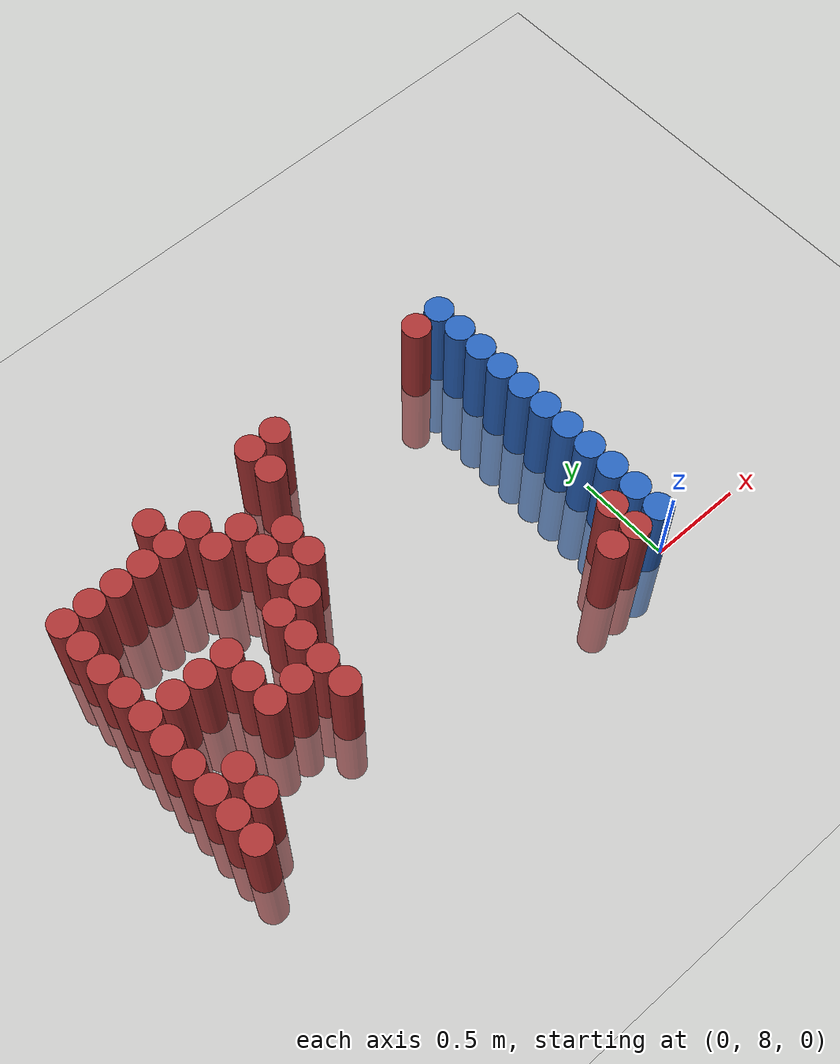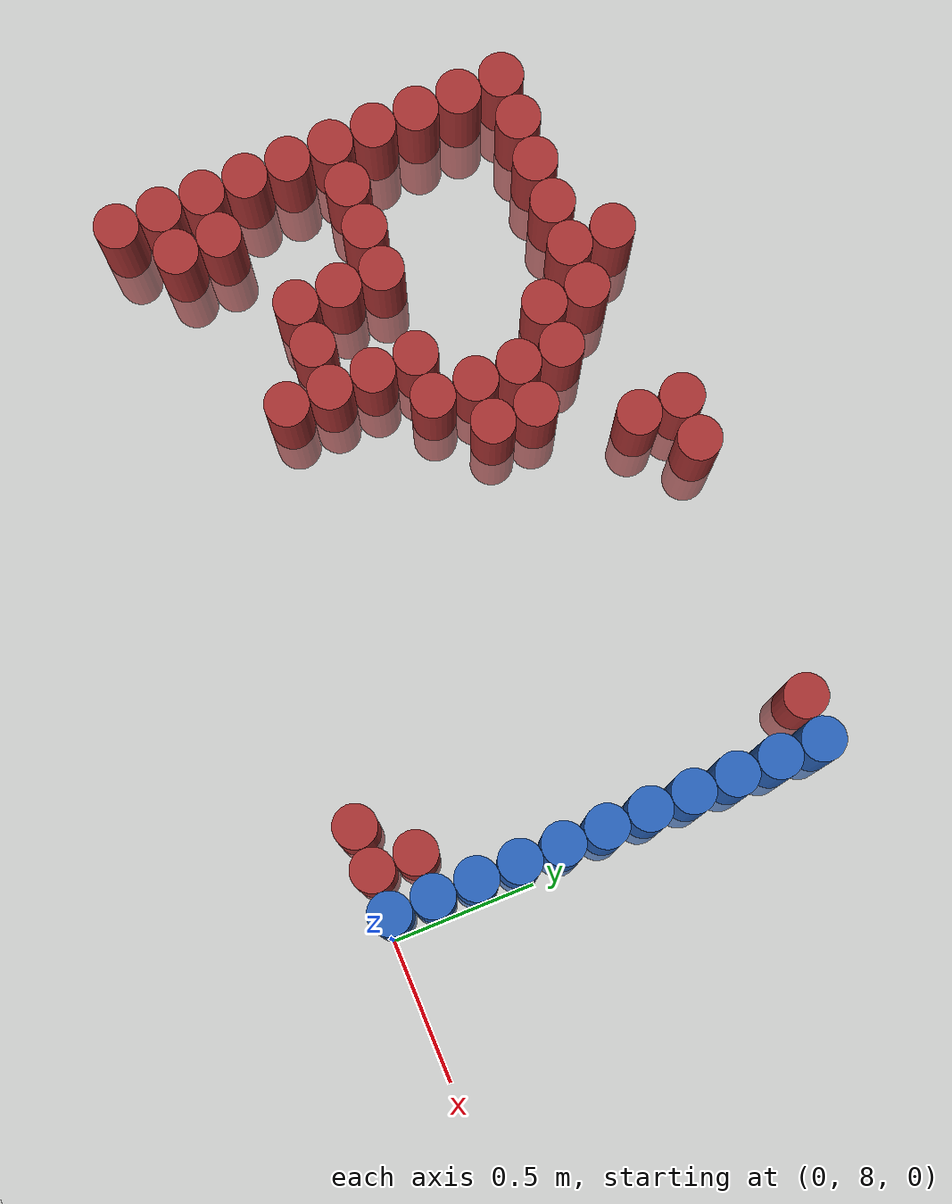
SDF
<sdf version="1.6">
 <world name="default">
  <model name="ground_plane">
   <static>1</static>
   <link name="link">
    <collision name="collision">
     <geometry><plane><normal>0 0 1</normal><size>100 100</size></plane></geometry>
     <surface><friction><ode><mu>100</mu><mu2>50</mu2></ode></friction></surface>
    </collision>
    <visual name="visual">
     <cast_shadows>0</cast_shadows>
     <geometry><plane><normal>0 0 1</normal><size>100 100</size></plane></geometry>
     <material>
      <script><uri>file://media/materials/scripts/gazebo.material</uri><name>Gazebo/Grey</name></script>
     </material>
    </visual>
   </link>
  </model>
  <model name="unit_cylinder_244">
   <static>1</static>
   <pose>-2.475000 8.025000 0.000000 0.000000 0.000000 0.000000</pose>
   <link name="link">
    <inertial>
     <mass>1</mass>
     <inertia><ixx>0.145833</ixx><ixy>0</ixy><ixz>0</ixz><iyy>0.145833</iyy><iyz>0</iyz><izz>0.125</izz></inertia>
    </inertial>
    <collision name="collision">
     <geometry><cylinder><radius>0.075000</radius><length>1</length></cylinder></geometry>
    </collision>
    <visual name="visual">
     <geometry><cylinder><radius>0.075000</radius><length>1</length></cylinder></geometry>
     <material>
      <ambient>0.648000 0.192000 0.192000 1</ambient>
      <diffuse>0.648000 0.192000 0.192000 1</diffuse>
     </material>
     <material>
      <script><name>Gazebo/Grey</name><uri>file://media/materials/scripts/gazebo.material</uri></script>
     </material>
    </visual>
   </link>
  </model>
  <model name="unit_cylinder_245">
   <static>1</static>
   <pose>-2.475000 8.175000 0.000000 0.000000 0.000000 0.000000</pose>
   <link name="link">
    <inertial>
     <mass>1</mass>
     <inertia><ixx>0.145833</ixx><ixy>0</ixy><ixz>0</ixz><iyy>0.145833</iyy><iyz>0</iyz><izz>0.125</izz></inertia>
    </inertial>
    <collision name="collision">
     <geometry><cylinder><radius>0.075000</radius><length>1</length></cylinder></geometry>
    </collision>
    <visual name="visual">
     <geometry><cylinder><radius>0.075000</radius><length>1</length></cylinder></geometry>
     <material>
      <ambient>0.648000 0.192000 0.192000 1</ambient>
      <diffuse>0.648000 0.192000 0.192000 1</diffuse>
     </material>
     <material>
      <script><name>Gazebo/Grey</name><uri>file://media/materials/scripts/gazebo.material</uri></script>
     </material>
    </visual>
   </link>
  </model>
  <model name="unit_cylinder_246">
   <static>1</static>
   <pose>-2.475000 8.325000 0.000000 0.000000 0.000000 0.000000</pose>
   <link name="link">
    <inertial>
     <mass>1</mass>
     <inertia><ixx>0.145833</ixx><ixy>0</ixy><ixz>0</ixz><iyy>0.145833</iyy><iyz>0</iyz><izz>0.125</izz></inertia>
    </inertial>
    <collision name="collision">
     <geometry><cylinder><radius>0.075000</radius><length>1</length></cylinder></geometry>
    </collision>
    <visual name="visual">
     <geometry><cylinder><radius>0.075000</radius><length>1</length></cylinder></geometry>
     <material>
      <ambient>0.648000 0.192000 0.192000 1</ambient>
      <diffuse>0.648000 0.192000 0.192000 1</diffuse>
     </material>
     <material>
      <script><name>Gazebo/Grey</name><uri>file://media/materials/scripts/gazebo.material</uri></script>
     </material>
    </visual>
   </link>
  </model>
  <model name="unit_cylinder_247">
   <static>1</static>
   <pose>-2.475000 8.475000 0.000000 0.000000 0.000000 0.000000</pose>
   <link name="link">
    <inertial>
     <mass>1</mass>
     <inertia><ixx>0.145833</ixx><ixy>0</ixy><ixz>0</ixz><iyy>0.145833</iyy><iyz>0</iyz><izz>0.125</izz></inertia>
    </inertial>
    <collision name="collision">
     <geometry><cylinder><radius>0.075000</radius><length>1</length></cylinder></geometry>
    </collision>
    <visual name="visual">
     <geometry><cylinder><radius>0.075000</radius><length>1</length></cylinder></geometry>
     <material>
      <ambient>0.648000 0.192000 0.192000 1</ambient>
      <diffuse>0.648000 0.192000 0.192000 1</diffuse>
     </material>
     <material>
      <script><name>Gazebo/Grey</name><uri>file://media/materials/scripts/gazebo.material</uri></script>
     </material>
    </visual>
   </link>
  </model>
  <model name="unit_cylinder_248">
   <static>1</static>
   <pose>-2.475000 8.625000 0.000000 0.000000 0.000000 0.000000</pose>
   <link name="link">
    <inertial>
     <mass>1</mass>
     <inertia><ixx>0.145833</ixx><ixy>0</ixy><ixz>0</ixz><iyy>0.145833</iyy><iyz>0</iyz><izz>0.125</izz></inertia>
    </inertial>
    <collision name="collision">
     <geometry><cylinder><radius>0.075000</radius><length>1</length></cylinder></geometry>
    </collision>
    <visual name="visual">
     <geometry><cylinder><radius>0.075000</radius><length>1</length></cylinder></geometry>
     <material>
      <ambient>0.648000 0.192000 0.192000 1</ambient>
      <diffuse>0.648000 0.192000 0.192000 1</diffuse>
     </material>
     <material>
      <script><name>Gazebo/Grey</name><uri>file://media/materials/scripts/gazebo.material</uri></script>
     </material>
    </visual>
   </link>
  </model>
  <model name="unit_cylinder_249">
   <static>1</static>
   <pose>-2.475000 8.775000 0.000000 0.000000 0.000000 0.000000</pose>
   <link name="link">
    <inertial>
     <mass>1</mass>
     <inertia><ixx>0.145833</ixx><ixy>0</ixy><ixz>0</ixz><iyy>0.145833</iyy><iyz>0</iyz><izz>0.125</izz></inertia>
    </inertial>
    <collision name="collision">
     <geometry><cylinder><radius>0.075000</radius><length>1</length></cylinder></geometry>
    </collision>
    <visual name="visual">
     <geometry><cylinder><radius>0.075000</radius><length>1</length></cylinder></geometry>
     <material>
      <ambient>0.648000 0.192000 0.192000 1</ambient>
      <diffuse>0.648000 0.192000 0.192000 1</diffuse>
     </material>
     <material>
      <script><name>Gazebo/Grey</name><uri>file://media/materials/scripts/gazebo.material</uri></script>
     </material>
    </visual>
   </link>
  </model>
  <model name="unit_cylinder_250">
   <static>1</static>
   <pose>-2.475000 8.925000 0.000000 0.000000 0.000000 0.000000</pose>
   <link name="link">
    <inertial>
     <mass>1</mass>
     <inertia><ixx>0.145833</ixx><ixy>0</ixy><ixz>0</ixz><iyy>0.145833</iyy><iyz>0</iyz><izz>0.125</izz></inertia>
    </inertial>
    <collision name="collision">
     <geometry><cylinder><radius>0.075000</radius><length>1</length></cylinder></geometry>
    </collision>
    <visual name="visual">
     <geometry><cylinder><radius>0.075000</radius><length>1</length></cylinder></geometry>
     <material>
      <ambient>0.648000 0.192000 0.192000 1</ambient>
      <diffuse>0.648000 0.192000 0.192000 1</diffuse>
     </material>
     <material>
      <script><name>Gazebo/Grey</name><uri>file://media/materials/scripts/gazebo.material</uri></script>
     </material>
    </visual>
   </link>
  </model>
  <model name="unit_cylinder_251">
   <static>1</static>
   <pose>-2.475000 9.075000 0.000000 0.000000 0.000000 0.000000</pose>
   <link name="link">
    <inertial>
     <mass>1</mass>
     <inertia><ixx>0.145833</ixx><ixy>0</ixy><ixz>0</ixz><iyy>0.145833</iyy><iyz>0</iyz><izz>0.125</izz></inertia>
    </inertial>
    <collision name="collision">
     <geometry><cylinder><radius>0.075000</radius><length>1</length></cylinder></geometry>
    </collision>
    <visual name="visual">
     <geometry><cylinder><radius>0.075000</radius><length>1</length></cylinder></geometry>
     <material>
      <ambient>0.648000 0.192000 0.192000 1</ambient>
      <diffuse>0.648000 0.192000 0.192000 1</diffuse>
     </material>
     <material>
      <script><name>Gazebo/Grey</name><uri>file://media/materials/scripts/gazebo.material</uri></script>
     </material>
    </visual>
   </link>
  </model>
  <model name="unit_cylinder_252">
   <static>1</static>
   <pose>-2.475000 9.225000 0.000000 0.000000 0.000000 0.000000</pose>
   <link name="link">
    <inertial>
     <mass>1</mass>
     <inertia><ixx>0.145833</ixx><ixy>0</ixy><ixz>0</ixz><iyy>0.145833</iyy><iyz>0</iyz><izz>0.125</izz></inertia>
    </inertial>
    <collision name="collision">
     <geometry><cylinder><radius>0.075000</radius><length>1</length></cylinder></geometry>
    </collision>
    <visual name="visual">
     <geometry><cylinder><radius>0.075000</radius><length>1</length></cylinder></geometry>
     <material>
      <ambient>0.648000 0.192000 0.192000 1</ambient>
      <diffuse>0.648000 0.192000 0.192000 1</diffuse>
     </material>
     <material>
      <script><name>Gazebo/Grey</name><uri>file://media/materials/scripts/gazebo.material</uri></script>
     </material>
    </visual>
   </link>
  </model>
  <model name="unit_cylinder_253">
   <static>1</static>
   <pose>-2.475000 9.375000 0.000000 0.000000 0.000000 0.000000</pose>
   <link name="link">
    <inertial>
     <mass>1</mass>
     <inertia><ixx>0.145833</ixx><ixy>0</ixy><ixz>0</ixz><iyy>0.145833</iyy><iyz>0</iyz><izz>0.125</izz></inertia>
    </inertial>
    <collision name="collision">
     <geometry><cylinder><radius>0.075000</radius><length>1</length></cylinder></geometry>
    </collision>
    <visual name="visual">
     <geometry><cylinder><radius>0.075000</radius><length>1</length></cylinder></geometry>
     <material>
      <ambient>0.648000 0.192000 0.192000 1</ambient>
      <diffuse>0.648000 0.192000 0.192000 1</diffuse>
     </material>
     <material>
      <script><name>Gazebo/Grey</name><uri>file://media/materials/scripts/gazebo.material</uri></script>
     </material>
    </visual>
   </link>
  </model>
  <model name="unit_cylinder_257">
   <static>1</static>
   <pose>-2.325000 8.175000 0.000000 0.000000 0.000000 0.000000</pose>
   <link name="link">
    <inertial>
     <mass>1</mass>
     <inertia><ixx>0.145833</ixx><ixy>0</ixy><ixz>0</ixz><iyy>0.145833</iyy><iyz>0</iyz><izz>0.125</izz></inertia>
    </inertial>
    <collision name="collision">
     <geometry><cylinder><radius>0.075000</radius><length>1</length></cylinder></geometry>
    </collision>
    <visual name="visual">
     <geometry><cylinder><radius>0.075000</radius><length>1</length></cylinder></geometry>
     <material>
      <ambient>0.648000 0.192000 0.192000 1</ambient>
      <diffuse>0.648000 0.192000 0.192000 1</diffuse>
     </material>
     <material>
      <script><name>Gazebo/Grey</name><uri>file://media/materials/scripts/gazebo.material</uri></script>
     </material>
    </visual>
   </link>
  </model>
  <model name="unit_cylinder_258">
   <static>1</static>
   <pose>-2.325000 8.325000 0.000000 0.000000 0.000000 0.000000</pose>
   <link name="link">
    <inertial>
     <mass>1</mass>
     <inertia><ixx>0.145833</ixx><ixy>0</ixy><ixz>0</ixz><iyy>0.145833</iyy><iyz>0</iyz><izz>0.125</izz></inertia>
    </inertial>
    <collision name="collision">
     <geometry><cylinder><radius>0.075000</radius><length>1</length></cylinder></geometry>
    </collision>
    <visual name="visual">
     <geometry><cylinder><radius>0.075000</radius><length>1</length></cylinder></geometry>
     <material>
      <ambient>0.648000 0.192000 0.192000 1</ambient>
      <diffuse>0.648000 0.192000 0.192000 1</diffuse>
     </material>
     <material>
      <script><name>Gazebo/Grey</name><uri>file://media/materials/scripts/gazebo.material</uri></script>
     </material>
    </visual>
   </link>
  </model>
  <model name="unit_cylinder_259">
   <static>1</static>
   <pose>-2.325000 8.775000 0.000000 0.000000 0.000000 0.000000</pose>
   <link name="link">
    <inertial>
     <mass>1</mass>
     <inertia><ixx>0.145833</ixx><ixy>0</ixy><ixz>0</ixz><iyy>0.145833</iyy><iyz>0</iyz><izz>0.125</izz></inertia>
    </inertial>
    <collision name="collision">
     <geometry><cylinder><radius>0.075000</radius><length>1</length></cylinder></geometry>
    </collision>
    <visual name="visual">
     <geometry><cylinder><radius>0.075000</radius><length>1</length></cylinder></geometry>
     <material>
      <ambient>0.648000 0.192000 0.192000 1</ambient>
      <diffuse>0.648000 0.192000 0.192000 1</diffuse>
     </material>
     <material>
      <script><name>Gazebo/Grey</name><uri>file://media/materials/scripts/gazebo.material</uri></script>
     </material>
    </visual>
   </link>
  </model>
  <model name="unit_cylinder_260">
   <static>1</static>
   <pose>-2.325000 9.375000 0.000000 0.000000 0.000000 0.000000</pose>
   <link name="link">
    <inertial>
     <mass>1</mass>
     <inertia><ixx>0.145833</ixx><ixy>0</ixy><ixz>0</ixz><iyy>0.145833</iyy><iyz>0</iyz><izz>0.125</izz></inertia>
    </inertial>
    <collision name="collision">
     <geometry><cylinder><radius>0.075000</radius><length>1</length></cylinder></geometry>
    </collision>
    <visual name="visual">
     <geometry><cylinder><radius>0.075000</radius><length>1</length></cylinder></geometry>
     <material>
      <ambient>0.648000 0.192000 0.192000 1</ambient>
      <diffuse>0.648000 0.192000 0.192000 1</diffuse>
     </material>
     <material>
      <script><name>Gazebo/Grey</name><uri>file://media/materials/scripts/gazebo.material</uri></script>
     </material>
    </visual>
   </link>
  </model>
  <model name="unit_cylinder_265">
   <static>1</static>
   <pose>-2.175000 8.775000 0.000000 0.000000 0.000000 0.000000</pose>
   <link name="link">
    <inertial>
     <mass>1</mass>
     <inertia><ixx>0.145833</ixx><ixy>0</ixy><ixz>0</ixz><iyy>0.145833</iyy><iyz>0</iyz><izz>0.125</izz></inertia>
    </inertial>
    <collision name="collision">
     <geometry><cylinder><radius>0.075000</radius><length>1</length></cylinder></geometry>
    </collision>
    <visual name="visual">
     <geometry><cylinder><radius>0.075000</radius><length>1</length></cylinder></geometry>
     <material>
      <ambient>0.648000 0.192000 0.192000 1</ambient>
      <diffuse>0.648000 0.192000 0.192000 1</diffuse>
     </material>
     <material>
      <script><name>Gazebo/Grey</name><uri>file://media/materials/scripts/gazebo.material</uri></script>
     </material>
    </visual>
   </link>
  </model>
  <model name="unit_cylinder_266">
   <static>1</static>
   <pose>-2.175000 9.375000 0.000000 0.000000 0.000000 0.000000</pose>
   <link name="link">
    <inertial>
     <mass>1</mass>
     <inertia><ixx>0.145833</ixx><ixy>0</ixy><ixz>0</ixz><iyy>0.145833</iyy><iyz>0</iyz><izz>0.125</izz></inertia>
    </inertial>
    <collision name="collision">
     <geometry><cylinder><radius>0.075000</radius><length>1</length></cylinder></geometry>
    </collision>
    <visual name="visual">
     <geometry><cylinder><radius>0.075000</radius><length>1</length></cylinder></geometry>
     <material>
      <ambient>0.648000 0.192000 0.192000 1</ambient>
      <diffuse>0.648000 0.192000 0.192000 1</diffuse>
     </material>
     <material>
      <script><name>Gazebo/Grey</name><uri>file://media/materials/scripts/gazebo.material</uri></script>
     </material>
    </visual>
   </link>
  </model>
  <model name="unit_cylinder_275">
   <static>1</static>
   <pose>-2.025000 8.475000 0.000000 0.000000 0.000000 0.000000</pose>
   <link name="link">
    <inertial>
     <mass>1</mass>
     <inertia><ixx>0.145833</ixx><ixy>0</ixy><ixz>0</ixz><iyy>0.145833</iyy><iyz>0</iyz><izz>0.125</izz></inertia>
    </inertial>
    <collision name="collision">
     <geometry><cylinder><radius>0.075000</radius><length>1</length></cylinder></geometry>
    </collision>
    <visual name="visual">
     <geometry><cylinder><radius>0.075000</radius><length>1</length></cylinder></geometry>
     <material>
      <ambient>0.648000 0.192000 0.192000 1</ambient>
      <diffuse>0.648000 0.192000 0.192000 1</diffuse>
     </material>
     <material>
      <script><name>Gazebo/Grey</name><uri>file://media/materials/scripts/gazebo.material</uri></script>
     </material>
    </visual>
   </link>
  </model>
  <model name="unit_cylinder_276">
   <static>1</static>
   <pose>-2.025000 8.625000 0.000000 0.000000 0.000000 0.000000</pose>
   <link name="link">
    <inertial>
     <mass>1</mass>
     <inertia><ixx>0.145833</ixx><ixy>0</ixy><ixz>0</ixz><iyy>0.145833</iyy><iyz>0</iyz><izz>0.125</izz></inertia>
    </inertial>
    <collision name="collision">
     <geometry><cylinder><radius>0.075000</radius><length>1</length></cylinder></geometry>
    </collision>
    <visual name="visual">
     <geometry><cylinder><radius>0.075000</radius><length>1</length></cylinder></geometry>
     <material>
      <ambient>0.648000 0.192000 0.192000 1</ambient>
      <diffuse>0.648000 0.192000 0.192000 1</diffuse>
     </material>
     <material>
      <script><name>Gazebo/Grey</name><uri>file://media/materials/scripts/gazebo.material</uri></script>
     </material>
    </visual>
   </link>
  </model>
  <model name="unit_cylinder_277">
   <static>1</static>
   <pose>-2.025000 8.775000 0.000000 0.000000 0.000000 0.000000</pose>
   <link name="link">
    <inertial>
     <mass>1</mass>
     <inertia><ixx>0.145833</ixx><ixy>0</ixy><ixz>0</ixz><iyy>0.145833</iyy><iyz>0</iyz><izz>0.125</izz></inertia>
    </inertial>
    <collision name="collision">
     <geometry><cylinder><radius>0.075000</radius><length>1</length></cylinder></geometry>
    </collision>
    <visual name="visual">
     <geometry><cylinder><radius>0.075000</radius><length>1</length></cylinder></geometry>
     <material>
      <ambient>0.648000 0.192000 0.192000 1</ambient>
      <diffuse>0.648000 0.192000 0.192000 1</diffuse>
     </material>
     <material>
      <script><name>Gazebo/Grey</name><uri>file://media/materials/scripts/gazebo.material</uri></script>
     </material>
    </visual>
   </link>
  </model>
  <model name="unit_cylinder_278">
   <static>1</static>
   <pose>-2.025000 9.375000 0.000000 0.000000 0.000000 0.000000</pose>
   <link name="link">
    <inertial>
     <mass>1</mass>
     <inertia><ixx>0.145833</ixx><ixy>0</ixy><ixz>0</ixz><iyy>0.145833</iyy><iyz>0</iyz><izz>0.125</izz></inertia>
    </inertial>
    <collision name="collision">
     <geometry><cylinder><radius>0.075000</radius><length>1</length></cylinder></geometry>
    </collision>
    <visual name="visual">
     <geometry><cylinder><radius>0.075000</radius><length>1</length></cylinder></geometry>
     <material>
      <ambient>0.648000 0.192000 0.192000 1</ambient>
      <diffuse>0.648000 0.192000 0.192000 1</diffuse>
     </material>
     <material>
      <script><name>Gazebo/Grey</name><uri>file://media/materials/scripts/gazebo.material</uri></script>
     </material>
    </visual>
   </link>
  </model>
  <model name="unit_cylinder_286">
   <static>1</static>
   <pose>-1.875000 8.475000 0.000000 0.000000 0.000000 0.000000</pose>
   <link name="link">
    <inertial>
     <mass>1</mass>
     <inertia><ixx>0.145833</ixx><ixy>0</ixy><ixz>0</ixz><iyy>0.145833</iyy><iyz>0</iyz><izz>0.125</izz></inertia>
    </inertial>
    <collision name="collision">
     <geometry><cylinder><radius>0.075000</radius><length>1</length></cylinder></geometry>
    </collision>
    <visual name="visual">
     <geometry><cylinder><radius>0.075000</radius><length>1</length></cylinder></geometry>
     <material>
      <ambient>0.648000 0.192000 0.192000 1</ambient>
      <diffuse>0.648000 0.192000 0.192000 1</diffuse>
     </material>
     <material>
      <script><name>Gazebo/Grey</name><uri>file://media/materials/scripts/gazebo.material</uri></script>
     </material>
    </visual>
   </link>
  </model>
  <model name="unit_cylinder_287">
   <static>1</static>
   <pose>-1.875000 9.375000 0.000000 0.000000 0.000000 0.000000</pose>
   <link name="link">
    <inertial>
     <mass>1</mass>
     <inertia><ixx>0.145833</ixx><ixy>0</ixy><ixz>0</ixz><iyy>0.145833</iyy><iyz>0</iyz><izz>0.125</izz></inertia>
    </inertial>
    <collision name="collision">
     <geometry><cylinder><radius>0.075000</radius><length>1</length></cylinder></geometry>
    </collision>
    <visual name="visual">
     <geometry><cylinder><radius>0.075000</radius><length>1</length></cylinder></geometry>
     <material>
      <ambient>0.648000 0.192000 0.192000 1</ambient>
      <diffuse>0.648000 0.192000 0.192000 1</diffuse>
     </material>
     <material>
      <script><name>Gazebo/Grey</name><uri>file://media/materials/scripts/gazebo.material</uri></script>
     </material>
    </visual>
   </link>
  </model>
  <model name="unit_cylinder_288">
   <static>1</static>
   <pose>-1.875000 9.525000 0.000000 0.000000 0.000000 0.000000</pose>
   <link name="link">
    <inertial>
     <mass>1</mass>
     <inertia><ixx>0.145833</ixx><ixy>0</ixy><ixz>0</ixz><iyy>0.145833</iyy><iyz>0</iyz><izz>0.125</izz></inertia>
    </inertial>
    <collision name="collision">
     <geometry><cylinder><radius>0.075000</radius><length>1</length></cylinder></geometry>
    </collision>
    <visual name="visual">
     <geometry><cylinder><radius>0.075000</radius><length>1</length></cylinder></geometry>
     <material>
      <ambient>0.648000 0.192000 0.192000 1</ambient>
      <diffuse>0.648000 0.192000 0.192000 1</diffuse>
     </material>
     <material>
      <script><name>Gazebo/Grey</name><uri>file://media/materials/scripts/gazebo.material</uri></script>
     </material>
    </visual>
   </link>
  </model>
  <model name="unit_cylinder_295">
   <static>1</static>
   <pose>-1.725000 8.325000 0.000000 0.000000 0.000000 0.000000</pose>
   <link name="link">
    <inertial>
     <mass>1</mass>
     <inertia><ixx>0.145833</ixx><ixy>0</ixy><ixz>0</ixz><iyy>0.145833</iyy><iyz>0</iyz><izz>0.125</izz></inertia>
    </inertial>
    <collision name="collision">
     <geometry><cylinder><radius>0.075000</radius><length>1</length></cylinder></geometry>
    </collision>
    <visual name="visual">
     <geometry><cylinder><radius>0.075000</radius><length>1</length></cylinder></geometry>
     <material>
      <ambient>0.648000 0.192000 0.192000 1</ambient>
      <diffuse>0.648000 0.192000 0.192000 1</diffuse>
     </material>
     <material>
      <script><name>Gazebo/Grey</name><uri>file://media/materials/scripts/gazebo.material</uri></script>
     </material>
    </visual>
   </link>
  </model>
  <model name="unit_cylinder_296">
   <static>1</static>
   <pose>-1.725000 8.475000 0.000000 0.000000 0.000000 0.000000</pose>
   <link name="link">
    <inertial>
     <mass>1</mass>
     <inertia><ixx>0.145833</ixx><ixy>0</ixy><ixz>0</ixz><iyy>0.145833</iyy><iyz>0</iyz><izz>0.125</izz></inertia>
    </inertial>
    <collision name="collision">
     <geometry><cylinder><radius>0.075000</radius><length>1</length></cylinder></geometry>
    </collision>
    <visual name="visual">
     <geometry><cylinder><radius>0.075000</radius><length>1</length></cylinder></geometry>
     <material>
      <ambient>0.648000 0.192000 0.192000 1</ambient>
      <diffuse>0.648000 0.192000 0.192000 1</diffuse>
     </material>
     <material>
      <script><name>Gazebo/Grey</name><uri>file://media/materials/scripts/gazebo.material</uri></script>
     </material>
    </visual>
   </link>
  </model>
  <model name="unit_cylinder_297">
   <static>1</static>
   <pose>-1.725000 8.625000 0.000000 0.000000 0.000000 0.000000</pose>
   <link name="link">
    <inertial>
     <mass>1</mass>
     <inertia><ixx>0.145833</ixx><ixy>0</ixy><ixz>0</ixz><iyy>0.145833</iyy><iyz>0</iyz><izz>0.125</izz></inertia>
    </inertial>
    <collision name="collision">
     <geometry><cylinder><radius>0.075000</radius><length>1</length></cylinder></geometry>
    </collision>
    <visual name="visual">
     <geometry><cylinder><radius>0.075000</radius><length>1</length></cylinder></geometry>
     <material>
      <ambient>0.648000 0.192000 0.192000 1</ambient>
      <diffuse>0.648000 0.192000 0.192000 1</diffuse>
     </material>
     <material>
      <script><name>Gazebo/Grey</name><uri>file://media/materials/scripts/gazebo.material</uri></script>
     </material>
    </visual>
   </link>
  </model>
  <model name="unit_cylinder_298">
   <static>1</static>
   <pose>-1.725000 8.775000 0.000000 0.000000 0.000000 0.000000</pose>
   <link name="link">
    <inertial>
     <mass>1</mass>
     <inertia><ixx>0.145833</ixx><ixy>0</ixy><ixz>0</ixz><iyy>0.145833</iyy><iyz>0</iyz><izz>0.125</izz></inertia>
    </inertial>
    <collision name="collision">
     <geometry><cylinder><radius>0.075000</radius><length>1</length></cylinder></geometry>
    </collision>
    <visual name="visual">
     <geometry><cylinder><radius>0.075000</radius><length>1</length></cylinder></geometry>
     <material>
      <ambient>0.648000 0.192000 0.192000 1</ambient>
      <diffuse>0.648000 0.192000 0.192000 1</diffuse>
     </material>
     <material>
      <script><name>Gazebo/Grey</name><uri>file://media/materials/scripts/gazebo.material</uri></script>
     </material>
    </visual>
   </link>
  </model>
  <model name="unit_cylinder_299">
   <static>1</static>
   <pose>-1.725000 9.225000 0.000000 0.000000 0.000000 0.000000</pose>
   <link name="link">
    <inertial>
     <mass>1</mass>
     <inertia><ixx>0.145833</ixx><ixy>0</ixy><ixz>0</ixz><iyy>0.145833</iyy><iyz>0</iyz><izz>0.125</izz></inertia>
    </inertial>
    <collision name="collision">
     <geometry><cylinder><radius>0.075000</radius><length>1</length></cylinder></geometry>
    </collision>
    <visual name="visual">
     <geometry><cylinder><radius>0.075000</radius><length>1</length></cylinder></geometry>
     <material>
      <ambient>0.648000 0.192000 0.192000 1</ambient>
      <diffuse>0.648000 0.192000 0.192000 1</diffuse>
     </material>
     <material>
      <script><name>Gazebo/Grey</name><uri>file://media/materials/scripts/gazebo.material</uri></script>
     </material>
    </visual>
   </link>
  </model>
  <model name="unit_cylinder_300">
   <static>1</static>
   <pose>-1.725000 9.375000 0.000000 0.000000 0.000000 0.000000</pose>
   <link name="link">
    <inertial>
     <mass>1</mass>
     <inertia><ixx>0.145833</ixx><ixy>0</ixy><ixz>0</ixz><iyy>0.145833</iyy><iyz>0</iyz><izz>0.125</izz></inertia>
    </inertial>
    <collision name="collision">
     <geometry><cylinder><radius>0.075000</radius><length>1</length></cylinder></geometry>
    </collision>
    <visual name="visual">
     <geometry><cylinder><radius>0.075000</radius><length>1</length></cylinder></geometry>
     <material>
      <ambient>0.648000 0.192000 0.192000 1</ambient>
      <diffuse>0.648000 0.192000 0.192000 1</diffuse>
     </material>
     <material>
      <script><name>Gazebo/Grey</name><uri>file://media/materials/scripts/gazebo.material</uri></script>
     </material>
    </visual>
   </link>
  </model>
  <model name="unit_cylinder_304">
   <static>1</static>
   <pose>-1.575000 8.775000 0.000000 0.000000 0.000000 0.000000</pose>
   <link name="link">
    <inertial>
     <mass>1</mass>
     <inertia><ixx>0.145833</ixx><ixy>0</ixy><ixz>0</ixz><iyy>0.145833</iyy><iyz>0</iyz><izz>0.125</izz></inertia>
    </inertial>
    <collision name="collision">
     <geometry><cylinder><radius>0.075000</radius><length>1</length></cylinder></geometry>
    </collision>
    <visual name="visual">
     <geometry><cylinder><radius>0.075000</radius><length>1</length></cylinder></geometry>
     <material>
      <ambient>0.648000 0.192000 0.192000 1</ambient>
      <diffuse>0.648000 0.192000 0.192000 1</diffuse>
     </material>
     <material>
      <script><name>Gazebo/Grey</name><uri>file://media/materials/scripts/gazebo.material</uri></script>
     </material>
    </visual>
   </link>
  </model>
  <model name="unit_cylinder_305">
   <static>1</static>
   <pose>-1.575000 8.925000 0.000000 0.000000 0.000000 0.000000</pose>
   <link name="link">
    <inertial>
     <mass>1</mass>
     <inertia><ixx>0.145833</ixx><ixy>0</ixy><ixz>0</ixz><iyy>0.145833</iyy><iyz>0</iyz><izz>0.125</izz></inertia>
    </inertial>
    <collision name="collision">
     <geometry><cylinder><radius>0.075000</radius><length>1</length></cylinder></geometry>
    </collision>
    <visual name="visual">
     <geometry><cylinder><radius>0.075000</radius><length>1</length></cylinder></geometry>
     <material>
      <ambient>0.648000 0.192000 0.192000 1</ambient>
      <diffuse>0.648000 0.192000 0.192000 1</diffuse>
     </material>
     <material>
      <script><name>Gazebo/Grey</name><uri>file://media/materials/scripts/gazebo.material</uri></script>
     </material>
    </visual>
   </link>
  </model>
  <model name="unit_cylinder_306">
   <static>1</static>
   <pose>-1.575000 9.075000 0.000000 0.000000 0.000000 0.000000</pose>
   <link name="link">
    <inertial>
     <mass>1</mass>
     <inertia><ixx>0.145833</ixx><ixy>0</ixy><ixz>0</ixz><iyy>0.145833</iyy><iyz>0</iyz><izz>0.125</izz></inertia>
    </inertial>
    <collision name="collision">
     <geometry><cylinder><radius>0.075000</radius><length>1</length></cylinder></geometry>
    </collision>
    <visual name="visual">
     <geometry><cylinder><radius>0.075000</radius><length>1</length></cylinder></geometry>
     <material>
      <ambient>0.648000 0.192000 0.192000 1</ambient>
      <diffuse>0.648000 0.192000 0.192000 1</diffuse>
     </material>
     <material>
      <script><name>Gazebo/Grey</name><uri>file://media/materials/scripts/gazebo.material</uri></script>
     </material>
    </visual>
   </link>
  </model>
  <model name="unit_cylinder_307">
   <static>1</static>
   <pose>-1.575000 9.225000 0.000000 0.000000 0.000000 0.000000</pose>
   <link name="link">
    <inertial>
     <mass>1</mass>
     <inertia><ixx>0.145833</ixx><ixy>0</ixy><ixz>0</ixz><iyy>0.145833</iyy><iyz>0</iyz><izz>0.125</izz></inertia>
    </inertial>
    <collision name="collision">
     <geometry><cylinder><radius>0.075000</radius><length>1</length></cylinder></geometry>
    </collision>
    <visual name="visual">
     <geometry><cylinder><radius>0.075000</radius><length>1</length></cylinder></geometry>
     <material>
      <ambient>0.648000 0.192000 0.192000 1</ambient>
      <diffuse>0.648000 0.192000 0.192000 1</diffuse>
     </material>
     <material>
      <script><name>Gazebo/Grey</name><uri>file://media/materials/scripts/gazebo.material</uri></script>
     </material>
    </visual>
   </link>
  </model>
  <model name="unit_cylinder_310">
   <static>1</static>
   <pose>-1.425000 8.925000 0.000000 0.000000 0.000000 0.000000</pose>
   <link name="link">
    <inertial>
     <mass>1</mass>
     <inertia><ixx>0.145833</ixx><ixy>0</ixy><ixz>0</ixz><iyy>0.145833</iyy><iyz>0</iyz><izz>0.125</izz></inertia>
    </inertial>
    <collision name="collision">
     <geometry><cylinder><radius>0.075000</radius><length>1</length></cylinder></geometry>
    </collision>
    <visual name="visual">
     <geometry><cylinder><radius>0.075000</radius><length>1</length></cylinder></geometry>
     <material>
      <ambient>0.648000 0.192000 0.192000 1</ambient>
      <diffuse>0.648000 0.192000 0.192000 1</diffuse>
     </material>
     <material>
      <script><name>Gazebo/Grey</name><uri>file://media/materials/scripts/gazebo.material</uri></script>
     </material>
    </visual>
   </link>
  </model>
  <model name="unit_cylinder_311">
   <static>1</static>
   <pose>-1.425000 9.075000 0.000000 0.000000 0.000000 0.000000</pose>
   <link name="link">
    <inertial>
     <mass>1</mass>
     <inertia><ixx>0.145833</ixx><ixy>0</ixy><ixz>0</ixz><iyy>0.145833</iyy><iyz>0</iyz><izz>0.125</izz></inertia>
    </inertial>
    <collision name="collision">
     <geometry><cylinder><radius>0.075000</radius><length>1</length></cylinder></geometry>
    </collision>
    <visual name="visual">
     <geometry><cylinder><radius>0.075000</radius><length>1</length></cylinder></geometry>
     <material>
      <ambient>0.648000 0.192000 0.192000 1</ambient>
      <diffuse>0.648000 0.192000 0.192000 1</diffuse>
     </material>
     <material>
      <script><name>Gazebo/Grey</name><uri>file://media/materials/scripts/gazebo.material</uri></script>
     </material>
    </visual>
   </link>
  </model>
  <model name="unit_cylinder_312">
   <static>1</static>
   <pose>-1.275000 9.375000 0.000000 0.000000 0.000000 0.000000</pose>
   <link name="link">
    <inertial>
     <mass>1</mass>
     <inertia><ixx>0.145833</ixx><ixy>0</ixy><ixz>0</ixz><iyy>0.145833</iyy><iyz>0</iyz><izz>0.125</izz></inertia>
    </inertial>
    <collision name="collision">
     <geometry><cylinder><radius>0.075000</radius><length>1</length></cylinder></geometry>
    </collision>
    <visual name="visual">
     <geometry><cylinder><radius>0.075000</radius><length>1</length></cylinder></geometry>
     <material>
      <ambient>0.648000 0.192000 0.192000 1</ambient>
      <diffuse>0.648000 0.192000 0.192000 1</diffuse>
     </material>
     <material>
      <script><name>Gazebo/Grey</name><uri>file://media/materials/scripts/gazebo.material</uri></script>
     </material>
    </visual>
   </link>
  </model>
  <model name="unit_cylinder_313">
   <static>1</static>
   <pose>-1.275000 9.525000 0.000000 0.000000 0.000000 0.000000</pose>
   <link name="link">
    <inertial>
     <mass>1</mass>
     <inertia><ixx>0.145833</ixx><ixy>0</ixy><ixz>0</ixz><iyy>0.145833</iyy><iyz>0</iyz><izz>0.125</izz></inertia>
    </inertial>
    <collision name="collision">
     <geometry><cylinder><radius>0.075000</radius><length>1</length></cylinder></geometry>
    </collision>
    <visual name="visual">
     <geometry><cylinder><radius>0.075000</radius><length>1</length></cylinder></geometry>
     <material>
      <ambient>0.648000 0.192000 0.192000 1</ambient>
      <diffuse>0.648000 0.192000 0.192000 1</diffuse>
     </material>
     <material>
      <script><name>Gazebo/Grey</name><uri>file://media/materials/scripts/gazebo.material</uri></script>
     </material>
    </visual>
   </link>
  </model>
  <model name="unit_cylinder_314">
   <static>1</static>
   <pose>-1.125000 9.525000 0.000000 0.000000 0.000000 0.000000</pose>
   <link name="link">
    <inertial>
     <mass>1</mass>
     <inertia><ixx>0.145833</ixx><ixy>0</ixy><ixz>0</ixz><iyy>0.145833</iyy><iyz>0</iyz><izz>0.125</izz></inertia>
    </inertial>
    <collision name="collision">
     <geometry><cylinder><radius>0.075000</radius><length>1</length></cylinder></geometry>
    </collision>
    <visual name="visual">
     <geometry><cylinder><radius>0.075000</radius><length>1</length></cylinder></geometry>
     <material>
      <ambient>0.648000 0.192000 0.192000 1</ambient>
      <diffuse>0.648000 0.192000 0.192000 1</diffuse>
     </material>
     <material>
      <script><name>Gazebo/Grey</name><uri>file://media/materials/scripts/gazebo.material</uri></script>
     </material>
    </visual>
   </link>
  </model>
  <model name="unit_cylinder_323">
   <static>1</static>
   <pose>-0.375000 8.025000 0.000000 0.000000 0.000000 0.000000</pose>
   <link name="link">
    <inertial>
     <mass>1</mass>
     <inertia><ixx>0.145833</ixx><ixy>0</ixy><ixz>0</ixz><iyy>0.145833</iyy><iyz>0</iyz><izz>0.125</izz></inertia>
    </inertial>
    <collision name="collision">
     <geometry><cylinder><radius>0.075000</radius><length>1</length></cylinder></geometry>
    </collision>
    <visual name="visual">
     <geometry><cylinder><radius>0.075000</radius><length>1</length></cylinder></geometry>
     <material>
      <ambient>0.648000 0.192000 0.192000 1</ambient>
      <diffuse>0.648000 0.192000 0.192000 1</diffuse>
     </material>
     <material>
      <script><name>Gazebo/Grey</name><uri>file://media/materials/scripts/gazebo.material</uri></script>
     </material>
    </visual>
   </link>
  </model>
  <model name="unit_cylinder_336">
   <static>1</static>
   <pose>-0.225000 8.025000 0.000000 0.000000 0.000000 0.000000</pose>
   <link name="link">
    <inertial>
     <mass>1</mass>
     <inertia><ixx>0.145833</ixx><ixy>0</ixy><ixz>0</ixz><iyy>0.145833</iyy><iyz>0</iyz><izz>0.125</izz></inertia>
    </inertial>
    <collision name="collision">
     <geometry><cylinder><radius>0.075000</radius><length>1</length></cylinder></geometry>
    </collision>
    <visual name="visual">
     <geometry><cylinder><radius>0.075000</radius><length>1</length></cylinder></geometry>
     <material>
      <ambient>0.648000 0.192000 0.192000 1</ambient>
      <diffuse>0.648000 0.192000 0.192000 1</diffuse>
     </material>
     <material>
      <script><name>Gazebo/Grey</name><uri>file://media/materials/scripts/gazebo.material</uri></script>
     </material>
    </visual>
   </link>
  </model>
  <model name="unit_cylinder_337">
   <static>1</static>
   <pose>-0.225000 8.175000 0.000000 0.000000 0.000000 0.000000</pose>
   <link name="link">
    <inertial>
     <mass>1</mass>
     <inertia><ixx>0.145833</ixx><ixy>0</ixy><ixz>0</ixz><iyy>0.145833</iyy><iyz>0</iyz><izz>0.125</izz></inertia>
    </inertial>
    <collision name="collision">
     <geometry><cylinder><radius>0.075000</radius><length>1</length></cylinder></geometry>
    </collision>
    <visual name="visual">
     <geometry><cylinder><radius>0.075000</radius><length>1</length></cylinder></geometry>
     <material>
      <ambient>0.648000 0.192000 0.192000 1</ambient>
      <diffuse>0.648000 0.192000 0.192000 1</diffuse>
     </material>
     <material>
      <script><name>Gazebo/Grey</name><uri>file://media/materials/scripts/gazebo.material</uri></script>
     </material>
    </visual>
   </link>
  </model>
  <model name="unit_cylinder_338">
   <static>1</static>
   <pose>-0.225000 9.525000 0.000000 0.000000 0.000000 0.000000</pose>
   <link name="link">
    <inertial>
     <mass>1</mass>
     <inertia><ixx>0.145833</ixx><ixy>0</ixy><ixz>0</ixz><iyy>0.145833</iyy><iyz>0</iyz><izz>0.125</izz></inertia>
    </inertial>
    <collision name="collision">
     <geometry><cylinder><radius>0.075000</radius><length>1</length></cylinder></geometry>
    </collision>
    <visual name="visual">
     <geometry><cylinder><radius>0.075000</radius><length>1</length></cylinder></geometry>
     <material>
      <ambient>0.648000 0.192000 0.192000 1</ambient>
      <diffuse>0.648000 0.192000 0.192000 1</diffuse>
     </material>
     <material>
      <script><name>Gazebo/Grey</name><uri>file://media/materials/scripts/gazebo.material</uri></script>
     </material>
    </visual>
   </link>
  </model>
  <model name="unit_cylinder_358">
   <static>1</static>
   <pose>-0.075000 8.025000 0.000000 0.000000 0.000000 0.000000</pose>
   <link name="link">
    <inertial>
     <mass>1</mass>
     <inertia><ixx>0.145833</ixx><ixy>0</ixy><ixz>0</ixz><iyy>0.145833</iyy><iyz>0</iyz><izz>0.125</izz></inertia>
    </inertial>
    <collision name="collision">
     <geometry><cylinder><radius>0.075000</radius><length>1</length></cylinder></geometry>
    </collision>
    <visual name="visual">
     <geometry><cylinder><radius>0.075000</radius><length>1</length></cylinder></geometry>
     <material>
      <ambient>0.152000 0.379000 0.720000 1</ambient>
      <diffuse>0.152000 0.379000 0.720000 1</diffuse>
     </material>
     <material>
      <script><name>Gazebo/Grey</name><uri>file://media/materials/scripts/gazebo.material</uri></script>
     </material>
    </visual>
   </link>
  </model>
  <model name="unit_cylinder_359">
   <static>1</static>
   <pose>-0.075000 8.175000 0.000000 0.000000 0.000000 0.000000</pose>
   <link name="link">
    <inertial>
     <mass>1</mass>
     <inertia><ixx>0.145833</ixx><ixy>0</ixy><ixz>0</ixz><iyy>0.145833</iyy><iyz>0</iyz><izz>0.125</izz></inertia>
    </inertial>
    <collision name="collision">
     <geometry><cylinder><radius>0.075000</radius><length>1</length></cylinder></geometry>
    </collision>
    <visual name="visual">
     <geometry><cylinder><radius>0.075000</radius><length>1</length></cylinder></geometry>
     <material>
      <ambient>0.152000 0.379000 0.720000 1</ambient>
      <diffuse>0.152000 0.379000 0.720000 1</diffuse>
     </material>
     <material>
      <script><name>Gazebo/Grey</name><uri>file://media/materials/scripts/gazebo.material</uri></script>
     </material>
    </visual>
   </link>
  </model>
  <model name="unit_cylinder_360">
   <static>1</static>
   <pose>-0.075000 8.325000 0.000000 0.000000 0.000000 0.000000</pose>
   <link name="link">
    <inertial>
     <mass>1</mass>
     <inertia><ixx>0.145833</ixx><ixy>0</ixy><ixz>0</ixz><iyy>0.145833</iyy><iyz>0</iyz><izz>0.125</izz></inertia>
    </inertial>
    <collision name="collision">
     <geometry><cylinder><radius>0.075000</radius><length>1</length></cylinder></geometry>
    </collision>
    <visual name="visual">
     <geometry><cylinder><radius>0.075000</radius><length>1</length></cylinder></geometry>
     <material>
      <ambient>0.152000 0.379000 0.720000 1</ambient>
      <diffuse>0.152000 0.379000 0.720000 1</diffuse>
     </material>
     <material>
      <script><name>Gazebo/Grey</name><uri>file://media/materials/scripts/gazebo.material</uri></script>
     </material>
    </visual>
   </link>
  </model>
  <model name="unit_cylinder_361">
   <static>1</static>
   <pose>-0.075000 8.475000 0.000000 0.000000 0.000000 0.000000</pose>
   <link name="link">
    <inertial>
     <mass>1</mass>
     <inertia><ixx>0.145833</ixx><ixy>0</ixy><ixz>0</ixz><iyy>0.145833</iyy><iyz>0</iyz><izz>0.125</izz></inertia>
    </inertial>
    <collision name="collision">
     <geometry><cylinder><radius>0.075000</radius><length>1</length></cylinder></geometry>
    </collision>
    <visual name="visual">
     <geometry><cylinder><radius>0.075000</radius><length>1</length></cylinder></geometry>
     <material>
      <ambient>0.152000 0.379000 0.720000 1</ambient>
      <diffuse>0.152000 0.379000 0.720000 1</diffuse>
     </material>
     <material>
      <script><name>Gazebo/Grey</name><uri>file://media/materials/scripts/gazebo.material</uri></script>
     </material>
    </visual>
   </link>
  </model>
  <model name="unit_cylinder_362">
   <static>1</static>
   <pose>-0.075000 8.625000 0.000000 0.000000 0.000000 0.000000</pose>
   <link name="link">
    <inertial>
     <mass>1</mass>
     <inertia><ixx>0.145833</ixx><ixy>0</ixy><ixz>0</ixz><iyy>0.145833</iyy><iyz>0</iyz><izz>0.125</izz></inertia>
    </inertial>
    <collision name="collision">
     <geometry><cylinder><radius>0.075000</radius><length>1</length></cylinder></geometry>
    </collision>
    <visual name="visual">
     <geometry><cylinder><radius>0.075000</radius><length>1</length></cylinder></geometry>
     <material>
      <ambient>0.152000 0.379000 0.720000 1</ambient>
      <diffuse>0.152000 0.379000 0.720000 1</diffuse>
     </material>
     <material>
      <script><name>Gazebo/Grey</name><uri>file://media/materials/scripts/gazebo.material</uri></script>
     </material>
    </visual>
   </link>
  </model>
  <model name="unit_cylinder_363">
   <static>1</static>
   <pose>-0.075000 8.775000 0.000000 0.000000 0.000000 0.000000</pose>
   <link name="link">
    <inertial>
     <mass>1</mass>
     <inertia><ixx>0.145833</ixx><ixy>0</ixy><ixz>0</ixz><iyy>0.145833</iyy><iyz>0</iyz><izz>0.125</izz></inertia>
    </inertial>
    <collision name="collision">
     <geometry><cylinder><radius>0.075000</radius><length>1</length></cylinder></geometry>
    </collision>
    <visual name="visual">
     <geometry><cylinder><radius>0.075000</radius><length>1</length></cylinder></geometry>
     <material>
      <ambient>0.152000 0.379000 0.720000 1</ambient>
      <diffuse>0.152000 0.379000 0.720000 1</diffuse>
     </material>
     <material>
      <script><name>Gazebo/Grey</name><uri>file://media/materials/scripts/gazebo.material</uri></script>
     </material>
    </visual>
   </link>
  </model>
  <model name="unit_cylinder_364">
   <static>1</static>
   <pose>-0.075000 8.925000 0.000000 0.000000 0.000000 0.000000</pose>
   <link name="link">
    <inertial>
     <mass>1</mass>
     <inertia><ixx>0.145833</ixx><ixy>0</ixy><ixz>0</ixz><iyy>0.145833</iyy><iyz>0</iyz><izz>0.125</izz></inertia>
    </inertial>
    <collision name="collision">
     <geometry><cylinder><radius>0.075000</radius><length>1</length></cylinder></geometry>
    </collision>
    <visual name="visual">
     <geometry><cylinder><radius>0.075000</radius><length>1</length></cylinder></geometry>
     <material>
      <ambient>0.152000 0.379000 0.720000 1</ambient>
      <diffuse>0.152000 0.379000 0.720000 1</diffuse>
     </material>
     <material>
      <script><name>Gazebo/Grey</name><uri>file://media/materials/scripts/gazebo.material</uri></script>
     </material>
    </visual>
   </link>
  </model>
  <model name="unit_cylinder_365">
   <static>1</static>
   <pose>-0.075000 9.075000 0.000000 0.000000 0.000000 0.000000</pose>
   <link name="link">
    <inertial>
     <mass>1</mass>
     <inertia><ixx>0.145833</ixx><ixy>0</ixy><ixz>0</ixz><iyy>0.145833</iyy><iyz>0</iyz><izz>0.125</izz></inertia>
    </inertial>
    <collision name="collision">
     <geometry><cylinder><radius>0.075000</radius><length>1</length></cylinder></geometry>
    </collision>
    <visual name="visual">
     <geometry><cylinder><radius>0.075000</radius><length>1</length></cylinder></geometry>
     <material>
      <ambient>0.152000 0.379000 0.720000 1</ambient>
      <diffuse>0.152000 0.379000 0.720000 1</diffuse>
     </material>
     <material>
      <script><name>Gazebo/Grey</name><uri>file://media/materials/scripts/gazebo.material</uri></script>
     </material>
    </visual>
   </link>
  </model>
  <model name="unit_cylinder_366">
   <static>1</static>
   <pose>-0.075000 9.225000 0.000000 0.000000 0.000000 0.000000</pose>
   <link name="link">
    <inertial>
     <mass>1</mass>
     <inertia><ixx>0.145833</ixx><ixy>0</ixy><ixz>0</ixz><iyy>0.145833</iyy><iyz>0</iyz><izz>0.125</izz></inertia>
    </inertial>
    <collision name="collision">
     <geometry><cylinder><radius>0.075000</radius><length>1</length></cylinder></geometry>
    </collision>
    <visual name="visual">
     <geometry><cylinder><radius>0.075000</radius><length>1</length></cylinder></geometry>
     <material>
      <ambient>0.152000 0.379000 0.720000 1</ambient>
      <diffuse>0.152000 0.379000 0.720000 1</diffuse>
     </material>
     <material>
      <script><name>Gazebo/Grey</name><uri>file://media/materials/scripts/gazebo.material</uri></script>
     </material>
    </visual>
   </link>
  </model>
  <model name="unit_cylinder_367">
   <static>1</static>
   <pose>-0.075000 9.375000 0.000000 0.000000 0.000000 0.000000</pose>
   <link name="link">
    <inertial>
     <mass>1</mass>
     <inertia><ixx>0.145833</ixx><ixy>0</ixy><ixz>0</ixz><iyy>0.145833</iyy><iyz>0</iyz><izz>0.125</izz></inertia>
    </inertial>
    <collision name="collision">
     <geometry><cylinder><radius>0.075000</radius><length>1</length></cylinder></geometry>
    </collision>
    <visual name="visual">
     <geometry><cylinder><radius>0.075000</radius><length>1</length></cylinder></geometry>
     <material>
      <ambient>0.152000 0.379000 0.720000 1</ambient>
      <diffuse>0.152000 0.379000 0.720000 1</diffuse>
     </material>
     <material>
      <script><name>Gazebo/Grey</name><uri>file://media/materials/scripts/gazebo.material</uri></script>
     </material>
    </visual>
   </link>
  </model>
  <model name="unit_cylinder_368">
   <static>1</static>
   <pose>-0.075000 9.525000 0.000000 0.000000 0.000000 0.000000</pose>
   <link name="link">
    <inertial>
     <mass>1</mass>
     <inertia><ixx>0.145833</ixx><ixy>0</ixy><ixz>0</ixz><iyy>0.145833</iyy><iyz>0</iyz><izz>0.125</izz></inertia>
    </inertial>
    <collision name="collision">
     <geometry><cylinder><radius>0.075000</radius><length>1</length></cylinder></geometry>
    </collision>
    <visual name="visual">
     <geometry><cylinder><radius>0.075000</radius><length>1</length></cylinder></geometry>
     <material>
      <ambient>0.152000 0.379000 0.720000 1</ambient>
      <diffuse>0.152000 0.379000 0.720000 1</diffuse>
     </material>
     <material>
      <script><name>Gazebo/Grey</name><uri>file://media/materials/scripts/gazebo.material</uri></script>
     </material>
    </visual>
   </link>
  </model>
 </world>
</sdf>
